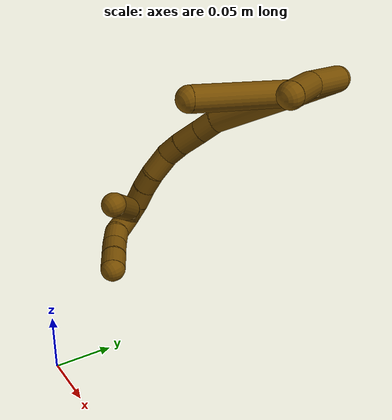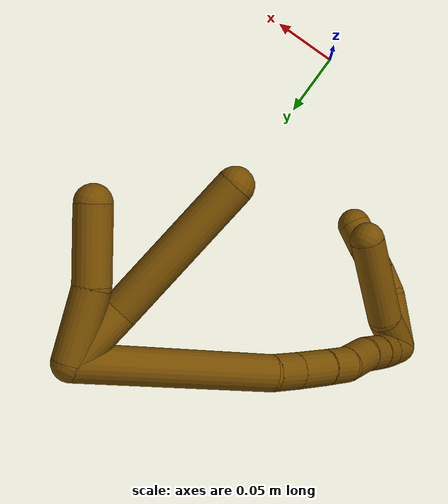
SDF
<sdf version="1.7">
 <world name="default">
  <model name="12">
   <static>0</static>
   <link name="12">
    <collision name="collision-cylinder-e_1_2_8">
     <pose>-0.006066 -0.001966 -0.020714 3.04695 -0.283692 -2.50121</pose>
     <geometry><cylinder><radius>0.0125</radius><length>0.043346</length></cylinder></geometry>
     <surface>
      <friction><ode><mu>1.16</mu><mu2>1.16</mu2><slip1>0</slip1><slip2>0</slip2></ode></friction>
      <contact><ode><kp>1e+06</kp><kd>1</kd><max_vel>0</max_vel><min_depth>0.001</min_depth></ode></contact>
     </surface>
    </collision>
    <visual name="visual-cylinder-e_1_2_8">
     <pose>-0.006066 -0.001966 -0.020714 3.04695 -0.283692 -2.50121</pose>
     <geometry><cylinder><radius>0.0125</radius><length>0.043346</length></cylinder></geometry>
     <material><ambient>0.466667 0.301961 0 1</ambient></material>
    </visual>
    <collision name="collision-cylinder-e_2_8_6">
     <pose>-0.021102 -0.021307 -0.09104 2.80473 -0.168996 -0.924269</pose>
     <geometry><cylinder><radius>0.0125</radius><length>0.106654</length></cylinder></geometry>
     <surface>
      <friction><ode><mu>1.16</mu><mu2>1.16</mu2><slip1>0</slip1><slip2>0</slip2></ode></friction>
      <contact><ode><kp>1e+06</kp><kd>1</kd><max_vel>0</max_vel><min_depth>0.001</min_depth></ode></contact>
     </surface>
    </collision>
    <visual name="visual-cylinder-e_2_8_6">
     <pose>-0.021102 -0.021307 -0.09104 2.80473 -0.168996 -0.924269</pose>
     <geometry><cylinder><radius>0.0125</radius><length>0.106654</length></cylinder></geometry>
     <material><ambient>0.466667 0.301961 0 1</ambient></material>
    </visual>
    <collision name="collision-cylinder-e_1_2_9">
     <pose>0.006359 -0.003875 -0.023122 2.97554 0.264863 2.02481</pose>
     <geometry><cylinder><radius>0.0125</radius><length>0.048583</length></cylinder></geometry>
     <surface>
      <friction><ode><mu>1.16</mu><mu2>1.16</mu2><slip1>0</slip1><slip2>0</slip2></ode></friction>
      <contact><ode><kp>1e+06</kp><kd>1</kd><max_vel>0</max_vel><min_depth>0.001</min_depth></ode></contact>
     </surface>
    </collision>
    <visual name="visual-cylinder-e_1_2_9">
     <pose>0.006359 -0.003875 -0.023122 2.97554 0.264863 2.02481</pose>
     <geometry><cylinder><radius>0.0125</radius><length>0.048583</length></cylinder></geometry>
     <material><ambient>0.466667 0.301961 0 1</ambient></material>
    </visual>
    <collision name="collision-cylinder-e_2_9_5">
     <pose>0.024902 -0.008636 -0.068865 3.10244 0.49376 2.98653</pose>
     <geometry><cylinder><radius>0.0125</radius><length>0.051417</length></cylinder></geometry>
     <surface>
      <friction><ode><mu>1.16</mu><mu2>1.16</mu2><slip1>0</slip1><slip2>0</slip2></ode></friction>
      <contact><ode><kp>1e+06</kp><kd>1</kd><max_vel>0</max_vel><min_depth>0.001</min_depth></ode></contact>
     </surface>
    </collision>
    <visual name="visual-cylinder-e_2_9_5">
     <pose>0.024902 -0.008636 -0.068865 3.10244 0.49376 2.98653</pose>
     <geometry><cylinder><radius>0.0125</radius><length>0.051417</length></cylinder></geometry>
     <material><ambient>0.466667 0.301961 0 1</ambient></material>
    </visual>
    <collision name="collision-cylinder-e_1_2_10">
     <pose>-0.064442 -0.001602 -0.027026 3.08239 -1.17307 -3.05254</pose>
     <geometry><cylinder><radius>0.0125</radius><length>0.139795</length></cylinder></geometry>
     <surface>
      <friction><ode><mu>1.16</mu><mu2>1.16</mu2><slip1>0</slip1><slip2>0</slip2></ode></friction>
      <contact><ode><kp>1e+06</kp><kd>1</kd><max_vel>0</max_vel><min_depth>0.001</min_depth></ode></contact>
     </surface>
    </collision>
    <visual name="visual-cylinder-e_1_2_10">
     <pose>-0.064442 -0.001602 -0.027026 3.08239 -1.17307 -3.05254</pose>
     <geometry><cylinder><radius>0.0125</radius><length>0.139795</length></cylinder></geometry>
     <material><ambient>0.466667 0.301961 0 1</ambient></material>
    </visual>
    <collision name="collision-cylinder-e_2_10_11">
     <pose>-0.138101 -0.001026 -0.058924 -2.7214 -1.04589 2.433</pose>
     <geometry><cylinder><radius>0.0125</radius><length>0.021302</length></cylinder></geometry>
     <surface>
      <friction><ode><mu>1.16</mu><mu2>1.16</mu2><slip1>0</slip1><slip2>0</slip2></ode></friction>
      <contact><ode><kp>1e+06</kp><kd>1</kd><max_vel>0</max_vel><min_depth>0.001</min_depth></ode></contact>
     </surface>
    </collision>
    <visual name="visual-cylinder-e_2_10_11">
     <pose>-0.138101 -0.001026 -0.058924 -2.7214 -1.04589 2.433</pose>
     <geometry><cylinder><radius>0.0125</radius><length>0.021302</length></cylinder></geometry>
     <material><ambient>0.466667 0.301961 0 1</ambient></material>
    </visual>
    <collision name="collision-cylinder-e_3_11_12">
     <pose>-0.159049 0.003684 -0.070385 -2.77456 -1.02923 2.50726</pose>
     <geometry><cylinder><radius>0.0125</radius><length>0.027381</length></cylinder></geometry>
     <surface>
      <friction><ode><mu>1.16</mu><mu2>1.16</mu2><slip1>0</slip1><slip2>0</slip2></ode></friction>
      <contact><ode><kp>1e+06</kp><kd>1</kd><max_vel>0</max_vel><min_depth>0.001</min_depth></ode></contact>
     </surface>
    </collision>
    <visual name="visual-cylinder-e_3_11_12">
     <pose>-0.159049 0.003684 -0.070385 -2.77456 -1.02923 2.50726</pose>
     <geometry><cylinder><radius>0.0125</radius><length>0.027381</length></cylinder></geometry>
     <material><ambient>0.466667 0.301961 0 1</ambient></material>
    </visual>
    <collision name="collision-cylinder-e_4_12_13">
     <pose>-0.179505 0.009084 -0.081879 -2.61269 -0.993358 2.2149</pose>
     <geometry><cylinder><radius>0.0125</radius><length>0.020826</length></cylinder></geometry>
     <surface>
      <friction><ode><mu>1.16</mu><mu2>1.16</mu2><slip1>0</slip1><slip2>0</slip2></ode></friction>
      <contact><ode><kp>1e+06</kp><kd>1</kd><max_vel>0</max_vel><min_depth>0.001</min_depth></ode></contact>
     </surface>
    </collision>
    <visual name="visual-cylinder-e_4_12_13">
     <pose>-0.179505 0.009084 -0.081879 -2.61269 -0.993358 2.2149</pose>
     <geometry><cylinder><radius>0.0125</radius><length>0.020826</length></cylinder></geometry>
     <material><ambient>0.466667 0.301961 0 1</ambient></material>
    </visual>
    <collision name="collision-cylinder-e_5_13_14">
     <pose>-0.197152 0.018214 -0.094255 -2.44385 -0.74131 1.63688</pose>
     <geometry><cylinder><radius>0.0125</radius><length>0.026428</length></cylinder></geometry>
     <surface>
      <friction><ode><mu>1.16</mu><mu2>1.16</mu2><slip1>0</slip1><slip2>0</slip2></ode></friction>
      <contact><ode><kp>1e+06</kp><kd>1</kd><max_vel>0</max_vel><min_depth>0.001</min_depth></ode></contact>
     </surface>
    </collision>
    <visual name="visual-cylinder-e_5_13_14">
     <pose>-0.197152 0.018214 -0.094255 -2.44385 -0.74131 1.63688</pose>
     <geometry><cylinder><radius>0.0125</radius><length>0.026428</length></cylinder></geometry>
     <material><ambient>0.466667 0.301961 0 1</ambient></material>
    </visual>
    <collision name="collision-cylinder-e_6_14_15">
     <pose>-0.21405 0.030082 -0.105667 -2.18386 -0.860908 1.44829</pose>
     <geometry><cylinder><radius>0.0125</radius><length>0.021031</length></cylinder></geometry>
     <surface>
      <friction><ode><mu>1.16</mu><mu2>1.16</mu2><slip1>0</slip1><slip2>0</slip2></ode></friction>
      <contact><ode><kp>1e+06</kp><kd>1</kd><max_vel>0</max_vel><min_depth>0.001</min_depth></ode></contact>
     </surface>
    </collision>
    <visual name="visual-cylinder-e_6_14_15">
     <pose>-0.21405 0.030082 -0.105667 -2.18386 -0.860908 1.44829</pose>
     <geometry><cylinder><radius>0.0125</radius><length>0.021031</length></cylinder></geometry>
     <material><ambient>0.466667 0.301961 0 1</ambient></material>
    </visual>
    <collision name="collision-cylinder-e_7_15_16">
     <pose>-0.229535 0.042053 -0.113241 -2.08904 -0.797572 1.25505</pose>
     <geometry><cylinder><radius>0.0125</radius><length>0.020985</length></cylinder></geometry>
     <surface>
      <friction><ode><mu>1.16</mu><mu2>1.16</mu2><slip1>0</slip1><slip2>0</slip2></ode></friction>
      <contact><ode><kp>1e+06</kp><kd>1</kd><max_vel>0</max_vel><min_depth>0.001</min_depth></ode></contact>
     </surface>
    </collision>
    <visual name="visual-cylinder-e_7_15_16">
     <pose>-0.229535 0.042053 -0.113241 -2.08904 -0.797572 1.25505</pose>
     <geometry><cylinder><radius>0.0125</radius><length>0.020985</length></cylinder></geometry>
     <material><ambient>0.466667 0.301961 0 1</ambient></material>
    </visual>
    <collision name="collision-cylinder-e_8_16_1">
     <pose>-0.244911 0.05453 -0.121826 -2.25217 -0.785387 1.43106</pose>
     <geometry><cylinder><radius>0.0125</radius><length>0.022252</length></cylinder></geometry>
     <surface>
      <friction><ode><mu>1.16</mu><mu2>1.16</mu2><slip1>0</slip1><slip2>0</slip2></ode></friction>
      <contact><ode><kp>1e+06</kp><kd>1</kd><max_vel>0</max_vel><min_depth>0.001</min_depth></ode></contact>
     </surface>
    </collision>
    <visual name="visual-cylinder-e_8_16_1">
     <pose>-0.244911 0.05453 -0.121826 -2.25217 -0.785387 1.43106</pose>
     <geometry><cylinder><radius>0.0125</radius><length>0.022252</length></cylinder></geometry>
     <material><ambient>0.466667 0.301961 0 1</ambient></material>
    </visual>
    <collision name="collision-cylinder-e_1_1_17">
     <pose>-0.241166 0.063316 -0.142545 -2.97347 0.628152 -2.63399</pose>
     <geometry><cylinder><radius>0.0125</radius><length>0.039522</length></cylinder></geometry>
     <surface>
      <friction><ode><mu>1.16</mu><mu2>1.16</mu2><slip1>0</slip1><slip2>0</slip2></ode></friction>
      <contact><ode><kp>1e+06</kp><kd>1</kd><max_vel>0</max_vel><min_depth>0.001</min_depth></ode></contact>
     </surface>
    </collision>
    <visual name="visual-cylinder-e_1_1_17">
     <pose>-0.241166 0.063316 -0.142545 -2.97347 0.628152 -2.63399</pose>
     <geometry><cylinder><radius>0.0125</radius><length>0.039522</length></cylinder></geometry>
     <material><ambient>0.466667 0.301961 0 1</ambient></material>
    </visual>
    <collision name="collision-cylinder-e_2_17_18">
     <pose>-0.223722 0.070349 -0.165266 -2.58201 0.617578 -1.67515</pose>
     <geometry><cylinder><radius>0.0125</radius><length>0.02014</length></cylinder></geometry>
     <surface>
      <friction><ode><mu>1.16</mu><mu2>1.16</mu2><slip1>0</slip1><slip2>0</slip2></ode></friction>
      <contact><ode><kp>1e+06</kp><kd>1</kd><max_vel>0</max_vel><min_depth>0.001</min_depth></ode></contact>
     </surface>
    </collision>
    <visual name="visual-cylinder-e_2_17_18">
     <pose>-0.223722 0.070349 -0.165266 -2.58201 0.617578 -1.67515</pose>
     <geometry><cylinder><radius>0.0125</radius><length>0.02014</length></cylinder></geometry>
     <material><ambient>0.466667 0.301961 0 1</ambient></material>
    </visual>
    <collision name="collision-cylinder-e_3_18_19">
     <pose>-0.210837 0.078334 -0.178508 -2.61815 0.77136 -1.97519</pose>
     <geometry><cylinder><radius>0.0125</radius><length>0.020239</length></cylinder></geometry>
     <surface>
      <friction><ode><mu>1.16</mu><mu2>1.16</mu2><slip1>0</slip1><slip2>0</slip2></ode></friction>
      <contact><ode><kp>1e+06</kp><kd>1</kd><max_vel>0</max_vel><min_depth>0.001</min_depth></ode></contact>
     </surface>
    </collision>
    <visual name="visual-cylinder-e_3_18_19">
     <pose>-0.210837 0.078334 -0.178508 -2.61815 0.77136 -1.97519</pose>
     <geometry><cylinder><radius>0.0125</radius><length>0.020239</length></cylinder></geometry>
     <material><ambient>0.466667 0.301961 0 1</ambient></material>
    </visual>
    <collision name="collision-cylinder-e_4_19_4">
     <pose>-0.197471 0.086447 -0.191198 -2.53072 0.678962 -1.68393</pose>
     <geometry><cylinder><radius>0.0125</radius><length>0.0201</length></cylinder></geometry>
     <surface>
      <friction><ode><mu>1.16</mu><mu2>1.16</mu2><slip1>0</slip1><slip2>0</slip2></ode></friction>
      <contact><ode><kp>1e+06</kp><kd>1</kd><max_vel>0</max_vel><min_depth>0.001</min_depth></ode></contact>
     </surface>
    </collision>
    <visual name="visual-cylinder-e_4_19_4">
     <pose>-0.197471 0.086447 -0.191198 -2.53072 0.678962 -1.68393</pose>
     <geometry><cylinder><radius>0.0125</radius><length>0.0201</length></cylinder></geometry>
     <material><ambient>0.466667 0.301961 0 1</ambient></material>
    </visual>
    <collision name="collision-cylinder-e_1_1_20">
     <pose>-0.238713 0.054645 -0.13193 2.28032 1.05889 1.81047</pose>
     <geometry><cylinder><radius>0.0125</radius><length>0.032267</length></cylinder></geometry>
     <surface>
      <friction><ode><mu>1.16</mu><mu2>1.16</mu2><slip1>0</slip1><slip2>0</slip2></ode></friction>
      <contact><ode><kp>1e+06</kp><kd>1</kd><max_vel>0</max_vel><min_depth>0.001</min_depth></ode></contact>
     </surface>
    </collision>
    <visual name="visual-cylinder-e_1_1_20">
     <pose>-0.238713 0.054645 -0.13193 2.28032 1.05889 1.81047</pose>
     <geometry><cylinder><radius>0.0125</radius><length>0.032267</length></cylinder></geometry>
     <material><ambient>0.466667 0.301961 0 1</ambient></material>
    </visual>
    <collision name="collision-cylinder-e_2_20_3">
     <pose>-0.198576 0.039851 -0.156822 2.72238 0.878596 2.29142</pose>
     <geometry><cylinder><radius>0.0125</radius><length>0.067733</length></cylinder></geometry>
     <surface>
      <friction><ode><mu>1.16</mu><mu2>1.16</mu2><slip1>0</slip1><slip2>0</slip2></ode></friction>
      <contact><ode><kp>1e+06</kp><kd>1</kd><max_vel>0</max_vel><min_depth>0.001</min_depth></ode></contact>
     </surface>
    </collision>
    <visual name="visual-cylinder-e_2_20_3">
     <pose>-0.198576 0.039851 -0.156822 2.72238 0.878596 2.29142</pose>
     <geometry><cylinder><radius>0.0125</radius><length>0.067733</length></cylinder></geometry>
     <material><ambient>0.466667 0.301961 0 1</ambient></material>
    </visual>
    <collision name="collision-sphere-3">
     <pose>-0.172504 0.031053 -0.176565 0 -0 0</pose>
     <geometry><sphere><radius>0.0125</radius></sphere></geometry>
     <surface>
      <friction><ode><mu>1.16</mu><mu2>1.16</mu2><slip1>0</slip1><slip2>0</slip2></ode></friction>
      <contact><ode><kp>1e+06</kp><kd>1</kd><max_vel>0</max_vel><min_depth>0.001</min_depth></ode></contact>
     </surface>
    </collision>
    <visual name="visual-sphere-3">
     <pose>-0.172504 0.031053 -0.176565 0 -0 0</pose>
     <geometry><sphere><radius>0.0125</radius></sphere></geometry>
     <material><ambient>0.466667 0.301961 0 1</ambient></material>
    </visual>
    <collision name="collision-sphere-20">
     <pose>-0.224647 0.048649 -0.137079 0 -0 0</pose>
     <geometry><sphere><radius>0.0125</radius></sphere></geometry>
     <surface>
      <friction><ode><mu>1.16</mu><mu2>1.16</mu2><slip1>0</slip1><slip2>0</slip2></ode></friction>
      <contact><ode><kp>1e+06</kp><kd>1</kd><max_vel>0</max_vel><min_depth>0.001</min_depth></ode></contact>
     </surface>
    </collision>
    <visual name="visual-sphere-20">
     <pose>-0.224647 0.048649 -0.137079 0 -0 0</pose>
     <geometry><sphere><radius>0.0125</radius></sphere></geometry>
     <material><ambient>0.466667 0.301961 0 1</ambient></material>
    </visual>
    <collision name="collision-sphere-4">
     <pose>-0.19116 0.090933 -0.197605 0 -0 0</pose>
     <geometry><sphere><radius>0.0125</radius></sphere></geometry>
     <surface>
      <friction><ode><mu>1.16</mu><mu2>1.16</mu2><slip1>0</slip1><slip2>0</slip2></ode></friction>
      <contact><ode><kp>1e+06</kp><kd>1</kd><max_vel>0</max_vel><min_depth>0.001</min_depth></ode></contact>
     </surface>
    </collision>
    <visual name="visual-sphere-4">
     <pose>-0.19116 0.090933 -0.197605 0 -0 0</pose>
     <geometry><sphere><radius>0.0125</radius></sphere></geometry>
     <material><ambient>0.466667 0.301961 0 1</ambient></material>
    </visual>
    <collision name="collision-sphere-10">
     <pose>-0.128884 -0.003204 -0.054051 0 -0 0</pose>
     <geometry><sphere><radius>0.0125</radius></sphere></geometry>
     <surface>
      <friction><ode><mu>1.16</mu><mu2>1.16</mu2><slip1>0</slip1><slip2>0</slip2></ode></friction>
      <contact><ode><kp>1e+06</kp><kd>1</kd><max_vel>0</max_vel><min_depth>0.001</min_depth></ode></contact>
     </surface>
    </collision>
    <visual name="visual-sphere-10">
     <pose>-0.128884 -0.003204 -0.054051 0 -0 0</pose>
     <geometry><sphere><radius>0.0125</radius></sphere></geometry>
     <material><ambient>0.466667 0.301961 0 1</ambient></material>
    </visual>
    <collision name="collision-sphere-5">
     <pose>0.037086 -0.009523 -0.091485 0 -0 0</pose>
     <geometry><sphere><radius>0.0125</radius></sphere></geometry>
     <surface>
      <friction><ode><mu>1.16</mu><mu2>1.16</mu2><slip1>0</slip1><slip2>0</slip2></ode></friction>
      <contact><ode><kp>1e+06</kp><kd>1</kd><max_vel>0</max_vel><min_depth>0.001</min_depth></ode></contact>
     </surface>
    </collision>
    <visual name="visual-sphere-5">
     <pose>0.037086 -0.009523 -0.091485 0 -0 0</pose>
     <geometry><sphere><radius>0.0125</radius></sphere></geometry>
     <material><ambient>0.466667 0.301961 0 1</ambient></material>
    </visual>
    <collision name="collision-sphere-6">
     <pose>-0.030071 -0.038682 -0.140653 0 -0 0</pose>
     <geometry><sphere><radius>0.0125</radius></sphere></geometry>
     <surface>
      <friction><ode><mu>1.16</mu><mu2>1.16</mu2><slip1>0</slip1><slip2>0</slip2></ode></friction>
      <contact><ode><kp>1e+06</kp><kd>1</kd><max_vel>0</max_vel><min_depth>0.001</min_depth></ode></contact>
     </surface>
    </collision>
    <visual name="visual-sphere-6">
     <pose>-0.030071 -0.038682 -0.140653 0 -0 0</pose>
     <geometry><sphere><radius>0.0125</radius></sphere></geometry>
     <material><ambient>0.466667 0.301961 0 1</ambient></material>
    </visual>
    <collision name="collision-sphere-9">
     <pose>0.012718 -0.00775 -0.046244 0 -0 0</pose>
     <geometry><sphere><radius>0.0125</radius></sphere></geometry>
     <surface>
      <friction><ode><mu>1.16</mu><mu2>1.16</mu2><slip1>0</slip1><slip2>0</slip2></ode></friction>
      <contact><ode><kp>1e+06</kp><kd>1</kd><max_vel>0</max_vel><min_depth>0.001</min_depth></ode></contact>
     </surface>
    </collision>
    <visual name="visual-sphere-9">
     <pose>0.012718 -0.00775 -0.046244 0 -0 0</pose>
     <geometry><sphere><radius>0.0125</radius></sphere></geometry>
     <material><ambient>0.466667 0.301961 0 1</ambient></material>
    </visual>
    <collision name="collision-sphere-2">
     <geometry><sphere><radius>0.0125</radius></sphere></geometry>
     <surface>
      <friction><ode><mu>1.16</mu><mu2>1.16</mu2><slip1>0</slip1><slip2>0</slip2></ode></friction>
      <contact><ode><kp>1e+06</kp><kd>1</kd><max_vel>0</max_vel><min_depth>0.001</min_depth></ode></contact>
     </surface>
    </collision>
    <visual name="visual-sphere-2">
     <geometry><sphere><radius>0.0125</radius></sphere></geometry>
     <material><ambient>0.466667 0.301961 0 1</ambient></material>
    </visual>
    <collision name="collision-sphere-19">
     <pose>-0.203782 0.081961 -0.184791 0 -0 0</pose>
     <geometry><sphere><radius>0.0125</radius></sphere></geometry>
     <surface>
      <friction><ode><mu>1.16</mu><mu2>1.16</mu2><slip1>0</slip1><slip2>0</slip2></ode></friction>
      <contact><ode><kp>1e+06</kp><kd>1</kd><max_vel>0</max_vel><min_depth>0.001</min_depth></ode></contact>
     </surface>
    </collision>
    <visual name="visual-sphere-19">
     <pose>-0.203782 0.081961 -0.184791 0 -0 0</pose>
     <geometry><sphere><radius>0.0125</radius></sphere></geometry>
     <material><ambient>0.466667 0.301961 0 1</ambient></material>
    </visual>
    <collision name="collision-sphere-8">
     <pose>-0.012133 -0.003932 -0.041427 0 -0 0</pose>
     <geometry><sphere><radius>0.0125</radius></sphere></geometry>
     <surface>
      <friction><ode><mu>1.16</mu><mu2>1.16</mu2><slip1>0</slip1><slip2>0</slip2></ode></friction>
      <contact><ode><kp>1e+06</kp><kd>1</kd><max_vel>0</max_vel><min_depth>0.001</min_depth></ode></contact>
     </surface>
    </collision>
    <visual name="visual-sphere-8">
     <pose>-0.012133 -0.003932 -0.041427 0 -0 0</pose>
     <geometry><sphere><radius>0.0125</radius></sphere></geometry>
     <material><ambient>0.466667 0.301961 0 1</ambient></material>
    </visual>
    <collision name="collision-sphere-11">
     <pose>-0.147318 0.001151 -0.063798 0 -0 0</pose>
     <geometry><sphere><radius>0.0125</radius></sphere></geometry>
     <surface>
      <friction><ode><mu>1.16</mu><mu2>1.16</mu2><slip1>0</slip1><slip2>0</slip2></ode></friction>
      <contact><ode><kp>1e+06</kp><kd>1</kd><max_vel>0</max_vel><min_depth>0.001</min_depth></ode></contact>
     </surface>
    </collision>
    <visual name="visual-sphere-11">
     <pose>-0.147318 0.001151 -0.063798 0 -0 0</pose>
     <geometry><sphere><radius>0.0125</radius></sphere></geometry>
     <material><ambient>0.466667 0.301961 0 1</ambient></material>
    </visual>
    <collision name="collision-sphere-12">
     <pose>-0.17078 0.006216 -0.076972 0 -0 0</pose>
     <geometry><sphere><radius>0.0125</radius></sphere></geometry>
     <surface>
      <friction><ode><mu>1.16</mu><mu2>1.16</mu2><slip1>0</slip1><slip2>0</slip2></ode></friction>
      <contact><ode><kp>1e+06</kp><kd>1</kd><max_vel>0</max_vel><min_depth>0.001</min_depth></ode></contact>
     </surface>
    </collision>
    <visual name="visual-sphere-12">
     <pose>-0.17078 0.006216 -0.076972 0 -0 0</pose>
     <geometry><sphere><radius>0.0125</radius></sphere></geometry>
     <material><ambient>0.466667 0.301961 0 1</ambient></material>
    </visual>
    <collision name="collision-sphere-13">
     <pose>-0.188229 0.011952 -0.086787 0 -0 0</pose>
     <geometry><sphere><radius>0.0125</radius></sphere></geometry>
     <surface>
      <friction><ode><mu>1.16</mu><mu2>1.16</mu2><slip1>0</slip1><slip2>0</slip2></ode></friction>
      <contact><ode><kp>1e+06</kp><kd>1</kd><max_vel>0</max_vel><min_depth>0.001</min_depth></ode></contact>
     </surface>
    </collision>
    <visual name="visual-sphere-13">
     <pose>-0.188229 0.011952 -0.086787 0 -0 0</pose>
     <geometry><sphere><radius>0.0125</radius></sphere></geometry>
     <material><ambient>0.466667 0.301961 0 1</ambient></material>
    </visual>
    <collision name="collision-sphere-14">
     <pose>-0.206075 0.024476 -0.101724 0 -0 0</pose>
     <geometry><sphere><radius>0.0125</radius></sphere></geometry>
     <surface>
      <friction><ode><mu>1.16</mu><mu2>1.16</mu2><slip1>0</slip1><slip2>0</slip2></ode></friction>
      <contact><ode><kp>1e+06</kp><kd>1</kd><max_vel>0</max_vel><min_depth>0.001</min_depth></ode></contact>
     </surface>
    </collision>
    <visual name="visual-sphere-14">
     <pose>-0.206075 0.024476 -0.101724 0 -0 0</pose>
     <geometry><sphere><radius>0.0125</radius></sphere></geometry>
     <material><ambient>0.466667 0.301961 0 1</ambient></material>
    </visual>
    <collision name="collision-sphere-15">
     <pose>-0.222026 0.035687 -0.109611 0 -0 0</pose>
     <geometry><sphere><radius>0.0125</radius></sphere></geometry>
     <surface>
      <friction><ode><mu>1.16</mu><mu2>1.16</mu2><slip1>0</slip1><slip2>0</slip2></ode></friction>
      <contact><ode><kp>1e+06</kp><kd>1</kd><max_vel>0</max_vel><min_depth>0.001</min_depth></ode></contact>
     </surface>
    </collision>
    <visual name="visual-sphere-15">
     <pose>-0.222026 0.035687 -0.109611 0 -0 0</pose>
     <geometry><sphere><radius>0.0125</radius></sphere></geometry>
     <material><ambient>0.466667 0.301961 0 1</ambient></material>
    </visual>
    <collision name="collision-sphere-16">
     <pose>-0.237044 0.048419 -0.116871 0 -0 0</pose>
     <geometry><sphere><radius>0.0125</radius></sphere></geometry>
     <surface>
      <friction><ode><mu>1.16</mu><mu2>1.16</mu2><slip1>0</slip1><slip2>0</slip2></ode></friction>
      <contact><ode><kp>1e+06</kp><kd>1</kd><max_vel>0</max_vel><min_depth>0.001</min_depth></ode></contact>
     </surface>
    </collision>
    <visual name="visual-sphere-16">
     <pose>-0.237044 0.048419 -0.116871 0 -0 0</pose>
     <geometry><sphere><radius>0.0125</radius></sphere></geometry>
     <material><ambient>0.466667 0.301961 0 1</ambient></material>
    </visual>
    <collision name="collision-sphere-1">
     <pose>-0.252778 0.060641 -0.126782 0 -0 0</pose>
     <geometry><sphere><radius>0.0125</radius></sphere></geometry>
     <surface>
      <friction><ode><mu>1.16</mu><mu2>1.16</mu2><slip1>0</slip1><slip2>0</slip2></ode></friction>
      <contact><ode><kp>1e+06</kp><kd>1</kd><max_vel>0</max_vel><min_depth>0.001</min_depth></ode></contact>
     </surface>
    </collision>
    <visual name="visual-sphere-1">
     <pose>-0.252778 0.060641 -0.126782 0 -0 0</pose>
     <geometry><sphere><radius>0.0125</radius></sphere></geometry>
     <material><ambient>0.466667 0.301961 0 1</ambient></material>
    </visual>
    <collision name="collision-sphere-18">
     <pose>-0.217891 0.074707 -0.172224 0 -0 0</pose>
     <geometry><sphere><radius>0.0125</radius></sphere></geometry>
     <surface>
      <friction><ode><mu>1.16</mu><mu2>1.16</mu2><slip1>0</slip1><slip2>0</slip2></ode></friction>
      <contact><ode><kp>1e+06</kp><kd>1</kd><max_vel>0</max_vel><min_depth>0.001</min_depth></ode></contact>
     </surface>
    </collision>
    <visual name="visual-sphere-18">
     <pose>-0.217891 0.074707 -0.172224 0 -0 0</pose>
     <geometry><sphere><radius>0.0125</radius></sphere></geometry>
     <material><ambient>0.466667 0.301961 0 1</ambient></material>
    </visual>
    <collision name="collision-sphere-17">
     <pose>-0.229553 0.065991 -0.158308 0 -0 0</pose>
     <geometry><sphere><radius>0.0125</radius></sphere></geometry>
     <surface>
      <friction><ode><mu>1.16</mu><mu2>1.16</mu2><slip1>0</slip1><slip2>0</slip2></ode></friction>
      <contact><ode><kp>1e+06</kp><kd>1</kd><max_vel>0</max_vel><min_depth>0.001</min_depth></ode></contact>
     </surface>
    </collision>
    <visual name="visual-sphere-17">
     <pose>-0.229553 0.065991 -0.158308 0 -0 0</pose>
     <geometry><sphere><radius>0.0125</radius></sphere></geometry>
     <material><ambient>0.466667 0.301961 0 1</ambient></material>
    </visual>
    <inertial>
     <pose>-0.112497 0.015958 -0.086713 0 -0 0</pose>
     <mass>0.75</mass>
     <inertia>
      <ixx>-0.000145</ixx>
      <ixy>0</ixy>
      <ixz>0</ixz>
      <iyy>0.000182</iyy>
      <iyz>0</iyz>
      <izz>0.00021</izz>
     </inertia>
    </inertial>
   </link>
   <pose>-9.1e-05 0.294214 0.211139 -1.43212 -0.477703 0.124005</pose>
  </model>
 </world>
</sdf>
